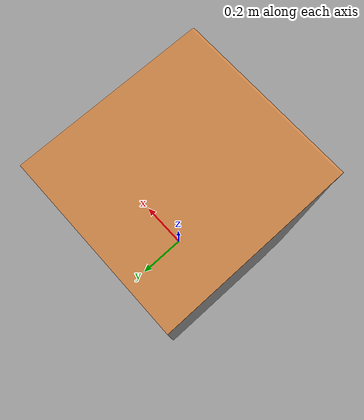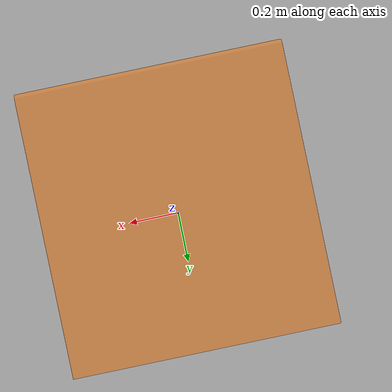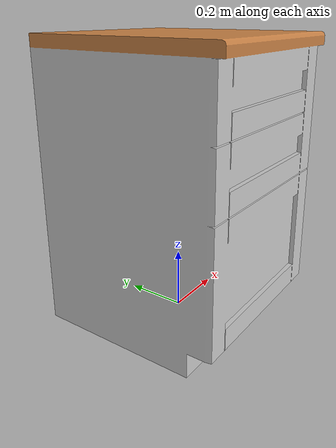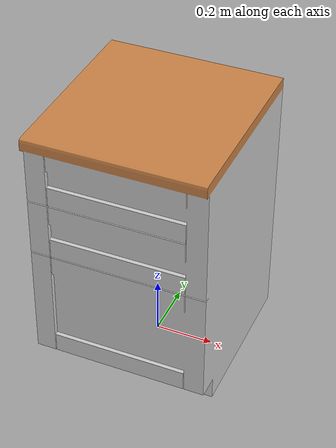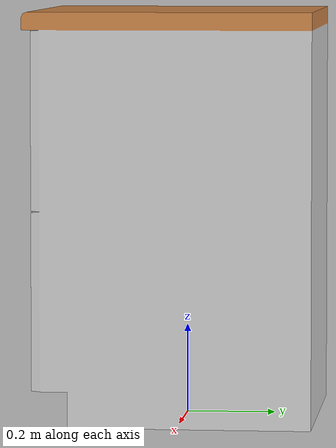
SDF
<?xml version='1.0'?>
<sdf version="1.4">
	<model name="floor_unit_narrow2">
		<static>1</static>
		<link name="link">
			<visual name="mesh">
				<geometry>
					<mesh>
						<uri>model://meshes/floor_unit_narrow2.dae</uri>
					</mesh>
				</geometry>
			</visual>
			<collision name="collider">
				<pose>0 0 0.44 0 0 0</pose>
				<geometry>
					<box>
						<size>0.6 0.6 0.88</size>
					</box>
				</geometry>
			</collision>
		</link>
	</model>
</sdf>
